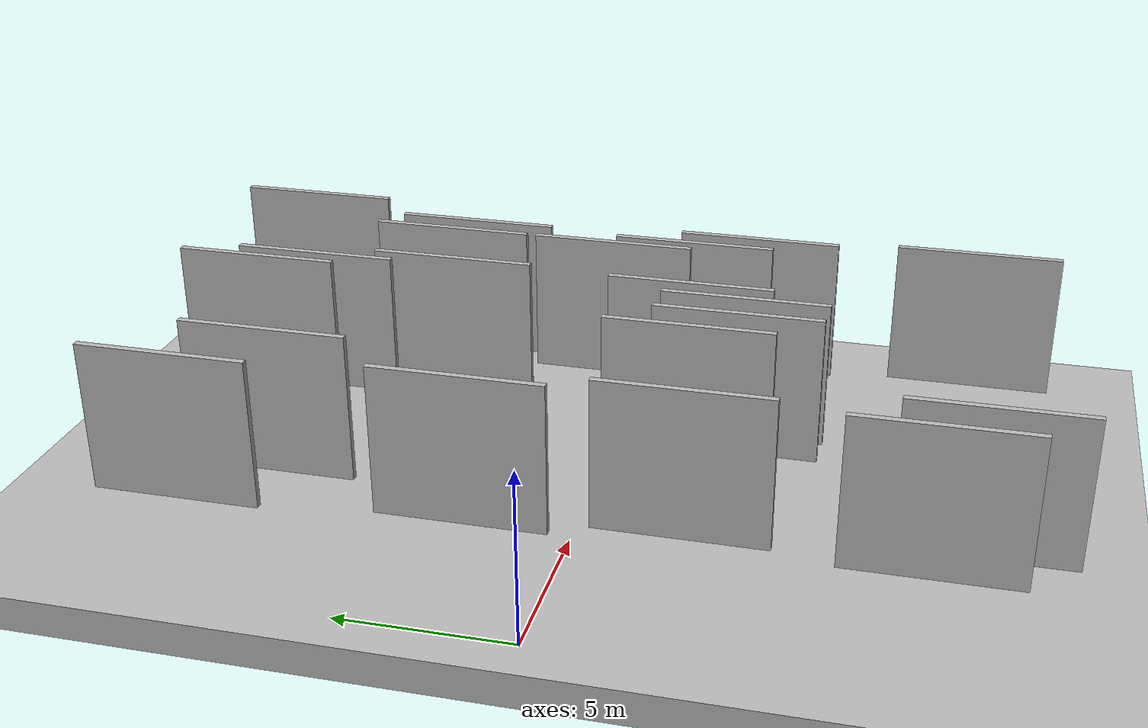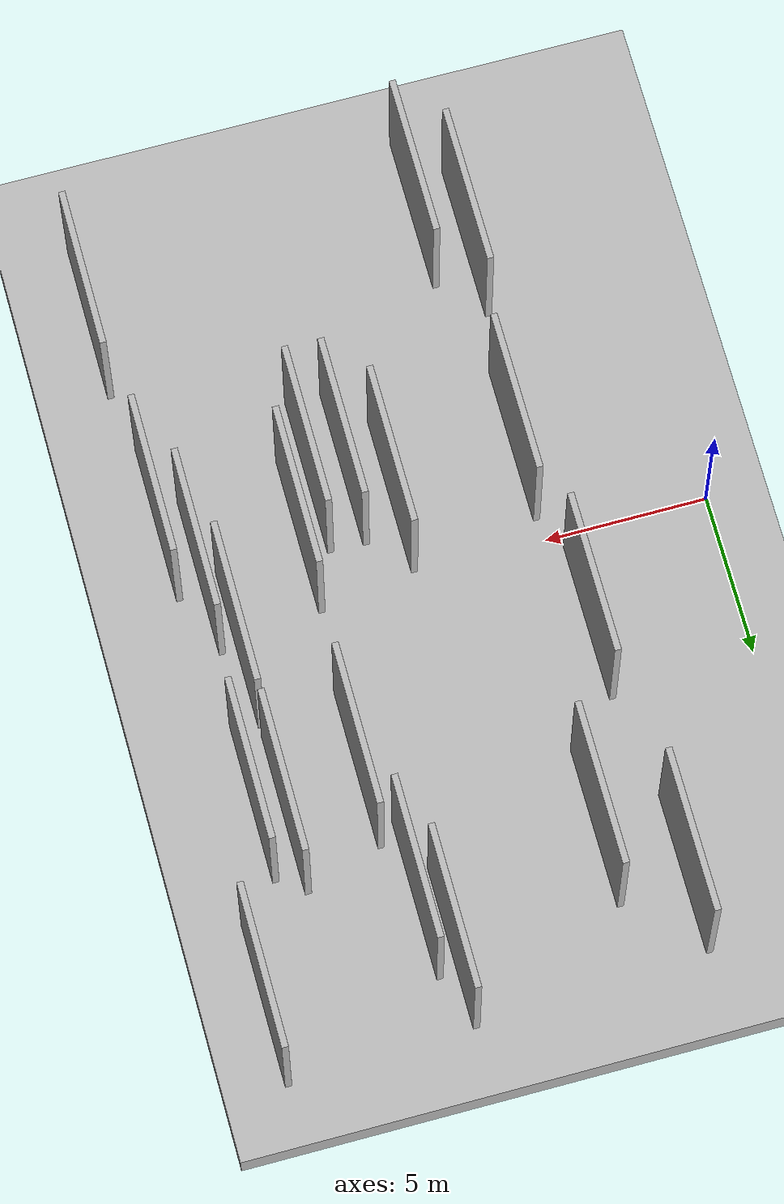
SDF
<?xml version="1.0" encoding="utf-8"?>

<sdf version="1.6">

   <world name="default">

      <gui fullscreen="0">

         <camera name="user_camera">

            <pose>-15 0 4.57585 0 0 0</pose>

            <view_controller>orbit</view_controller>

         </camera>

      </gui>

      <scene>

         <sky>

           <clouds>

             <speed>12</speed>

           </clouds>

         </sky>

         <ambient>0.4 0.4 0.4 1</ambient>

         <background>0.7 0.7 0.7 1</background>

         <shadows>1</shadows>

      </scene>

      <gravity>0 0 -9.8066</gravity>

      <magnetic_field>6e-06 2.3e-05 -4.2e-05</magnetic_field>

      <physics default="0" name="default_physics" type="ode">

         <ode>

            <solver>

               <type>quick</type>

               <iters>10</iters>

               <sor>1.0</sor>

               <use_dynamic_moi_rescaling>0</use_dynamic_moi_rescaling>

            </solver>

            <constraints>

               <cfm>0</cfm>

               <erp>0.2</erp>

               <contact_max_correcting_vel>100</contact_max_correcting_vel>

               <contact_surface_layer>0.001</contact_surface_layer>

            </constraints>

         </ode>

         <max_step_size>0.004</max_step_size>

         <real_time_factor>1</real_time_factor>

         <real_time_update_rate>250</real_time_update_rate>

      </physics>

      <light name="sun" type="directional">

         <cast_shadows>1</cast_shadows>

         <pose>0 0 10 0 0 0</pose>

         <diffuse>0.8 0.8 0.8 1</diffuse>

         <specular>0.2 0.2 0.2 1</specular>

         <attenuation>

            <range>1000</range>

            <constant>0.9</constant>

            <linear>0.01</linear>

            <quadratic>0.001</quadratic>

         </attenuation>

         <direction>-0.5 0.1 -0.9</direction>

      </light>

      <include>

         <name>ground_plane_1</name>

         <uri>model://HANNAS_ground_plane</uri>

         <pose>0 0 0  0 0 0</pose>

      </include>

      <include>

         <name>ground_plane_2</name>

         <uri>model://HANNAS_ground_plane</uri>

         <pose>100 0 0  0 0 0</pose>

      </include>

      <model name="HANNAS_wall_1">

         <static>1</static>

         <pose frame="">14.7380 1.0888 0.0 0.000000 0.000000 1.570796</pose>

         <link name="link">

            <pose frame="">0 0 2.50 0 0 0</pose>

            <collision name="collision">

               <geometry>

                  <box>

                     <size>5.00 0.2 5.00</size>

                  </box>

               </geometry>

               <max_contacts>10</max_contacts>

               <surface>

                  <contact>

                     <ode/>

                  </contact>

                  <bounce/>

                  <friction>

                     <torsional>

                        <ode/>

                     </torsional>

                     <ode/>

                  </friction>

               </surface>

            </collision>

            <visual name="visual">

               <cast_shadows>0</cast_shadows>

               <geometry>

                  <box>

                     <size>5.00 0.2 5.00</size>

                  </box>

               </geometry>

               <material>

                  <script>

                     <uri>model://HANNAS_wall/materials/scripts</uri>

                     <uri>model://HANNAS_wall/materials/textures</uri>

                     <name>vrc/HANNAS_wall</name>

                  </script>

               </material>

            </visual>

            <self_collide>0</self_collide>

            <enable_wind>0</enable_wind>

            <kinematic>0</kinematic>

         </link>

      </model>

      <model name="HANNAS_wall_2">

         <static>1</static>

         <pose frame="">16.4564 -10.1881 0.0 0.000000 0.000000 1.570796</pose>

         <link name="link">

            <pose frame="">0 0 2.50 0 0 0</pose>

            <collision name="collision">

               <geometry>

                  <box>

                     <size>5.00 0.2 5.00</size>

                  </box>

               </geometry>

               <max_contacts>10</max_contacts>

               <surface>

                  <contact>

                     <ode/>

                  </contact>

                  <bounce/>

                  <friction>

                     <torsional>

                        <ode/>

                     </torsional>

                     <ode/>

                  </friction>

               </surface>

            </collision>

            <visual name="visual">

               <cast_shadows>0</cast_shadows>

               <geometry>

                  <box>

                     <size>5.00 0.2 5.00</size>

                  </box>

               </geometry>

               <material>

                  <script>

                     <uri>model://HANNAS_wall/materials/scripts</uri>

                     <uri>model://HANNAS_wall/materials/textures</uri>

                     <name>vrc/HANNAS_wall</name>

                  </script>

               </material>

            </visual>

            <self_collide>0</self_collide>

            <enable_wind>0</enable_wind>

            <kinematic>0</kinematic>

         </link>

      </model>

      <model name="HANNAS_wall_3">

         <static>1</static>

         <pose frame="">16.0737 -3.3738 0.0 0.000000 0.000000 1.570796</pose>

         <link name="link">

            <pose frame="">0 0 2.50 0 0 0</pose>

            <collision name="collision">

               <geometry>

                  <box>

                     <size>5.00 0.2 5.00</size>

                  </box>

               </geometry>

               <max_contacts>10</max_contacts>

               <surface>

                  <contact>

                     <ode/>

                  </contact>

                  <bounce/>

                  <friction>

                     <torsional>

                        <ode/>

                     </torsional>

                     <ode/>

                  </friction>

               </surface>

            </collision>

            <visual name="visual">

               <cast_shadows>0</cast_shadows>

               <geometry>

                  <box>

                     <size>5.00 0.2 5.00</size>

                  </box>

               </geometry>

               <material>

                  <script>

                     <uri>model://HANNAS_wall/materials/scripts</uri>

                     <uri>model://HANNAS_wall/materials/textures</uri>

                     <name>vrc/HANNAS_wall</name>

                  </script>

               </material>

            </visual>

            <self_collide>0</self_collide>

            <enable_wind>0</enable_wind>

            <kinematic>0</kinematic>

         </link>

      </model>

      <model name="HANNAS_wall_4">

         <static>1</static>

         <pose frame="">3.9370 11.1824 0.0 0.000000 0.000000 1.570796</pose>

         <link name="link">

            <pose frame="">0 0 2.50 0 0 0</pose>

            <collision name="collision">

               <geometry>

                  <box>

                     <size>5.00 0.2 5.00</size>

                  </box>

               </geometry>

               <max_contacts>10</max_contacts>

               <surface>

                  <contact>

                     <ode/>

                  </contact>

                  <bounce/>

                  <friction>

                     <torsional>

                        <ode/>

                     </torsional>

                     <ode/>

                  </friction>

               </surface>

            </collision>

            <visual name="visual">

               <cast_shadows>0</cast_shadows>

               <geometry>

                  <box>

                     <size>5.00 0.2 5.00</size>

                  </box>

               </geometry>

               <material>

                  <script>

                     <uri>model://HANNAS_wall/materials/scripts</uri>

                     <uri>model://HANNAS_wall/materials/textures</uri>

                     <name>vrc/HANNAS_wall</name>

                  </script>

               </material>

            </visual>

            <self_collide>0</self_collide>

            <enable_wind>0</enable_wind>

            <kinematic>0</kinematic>

         </link>

      </model>

      <model name="HANNAS_wall_5">

         <static>1</static>

         <pose frame="">12.0923 -1.9052 0.0 0.000000 0.000000 1.570796</pose>

         <link name="link">

            <pose frame="">0 0 2.50 0 0 0</pose>

            <collision name="collision">

               <geometry>

                  <box>

                     <size>5.00 0.2 5.00</size>

                  </box>

               </geometry>

               <max_contacts>10</max_contacts>

               <surface>

                  <contact>

                     <ode/>

                  </contact>

                  <bounce/>

                  <friction>

                     <torsional>

                        <ode/>

                     </torsional>

                     <ode/>

                  </friction>

               </surface>

            </collision>

            <visual name="visual">

               <cast_shadows>0</cast_shadows>

               <geometry>

                  <box>

                     <size>5.00 0.2 5.00</size>

                  </box>

               </geometry>

               <material>

                  <script>

                     <uri>model://HANNAS_wall/materials/scripts</uri>

                     <uri>model://HANNAS_wall/materials/textures</uri>

                     <name>vrc/HANNAS_wall</name>

                  </script>

               </material>

            </visual>

            <self_collide>0</self_collide>

            <enable_wind>0</enable_wind>

            <kinematic>0</kinematic>

         </link>

      </model>

      <model name="HANNAS_wall_6">

         <static>1</static>

         <pose frame="">11.3502 -3.6699 0.0 0.000000 0.000000 1.570796</pose>

         <link name="link">

            <pose frame="">0 0 2.50 0 0 0</pose>

            <collision name="collision">

               <geometry>

                  <box>

                     <size>5.00 0.2 5.00</size>

                  </box>

               </geometry>

               <max_contacts>10</max_contacts>

               <surface>

                  <contact>

                     <ode/>

                  </contact>

                  <bounce/>

                  <friction>

                     <torsional>

                        <ode/>

                     </torsional>

                     <ode/>

                  </friction>

               </surface>

            </collision>

            <visual name="visual">

               <cast_shadows>0</cast_shadows>

               <geometry>

                  <box>

                     <size>5.00 0.2 5.00</size>

                  </box>

               </geometry>

               <material>

                  <script>

                     <uri>model://HANNAS_wall/materials/scripts</uri>

                     <uri>model://HANNAS_wall/materials/textures</uri>

                     <name>vrc/HANNAS_wall</name>

                  </script>

               </material>

            </visual>

            <self_collide>0</self_collide>

            <enable_wind>0</enable_wind>

            <kinematic>0</kinematic>

         </link>

      </model>

      <model name="HANNAS_wall_7">

         <static>1</static>

         <pose frame="">6.0468 -11.0918 0.0 0.000000 0.000000 1.570796</pose>

         <link name="link">

            <pose frame="">0 0 2.50 0 0 0</pose>

            <collision name="collision">

               <geometry>

                  <box>

                     <size>5.00 0.2 5.00</size>

                  </box>

               </geometry>

               <max_contacts>10</max_contacts>

               <surface>

                  <contact>

                     <ode/>

                  </contact>

                  <bounce/>

                  <friction>

                     <torsional>

                        <ode/>

                     </torsional>

                     <ode/>

                  </friction>

               </surface>

            </collision>

            <visual name="visual">

               <cast_shadows>0</cast_shadows>

               <geometry>

                  <box>

                     <size>5.00 0.2 5.00</size>

                  </box>

               </geometry>

               <material>

                  <script>

                     <uri>model://HANNAS_wall/materials/scripts</uri>

                     <uri>model://HANNAS_wall/materials/textures</uri>

                     <name>vrc/HANNAS_wall</name>

                  </script>

               </material>

            </visual>

            <self_collide>0</self_collide>

            <enable_wind>0</enable_wind>

            <kinematic>0</kinematic>

         </link>

      </model>

      <model name="HANNAS_wall_8">

         <static>1</static>

         <pose frame="">5.1480 -3.0388 0.0 0.000000 0.000000 1.570796</pose>

         <link name="link">

            <pose frame="">0 0 2.50 0 0 0</pose>

            <collision name="collision">

               <geometry>

                  <box>

                     <size>5.00 0.2 5.00</size>

                  </box>

               </geometry>

               <max_contacts>10</max_contacts>

               <surface>

                  <contact>

                     <ode/>

                  </contact>

                  <bounce/>

                  <friction>

                     <torsional>

                        <ode/>

                     </torsional>

                     <ode/>

                  </friction>

               </surface>

            </collision>

            <visual name="visual">

               <cast_shadows>0</cast_shadows>

               <geometry>

                  <box>

                     <size>5.00 0.2 5.00</size>

                  </box>

               </geometry>

               <material>

                  <script>

                     <uri>model://HANNAS_wall/materials/scripts</uri>

                     <uri>model://HANNAS_wall/materials/textures</uri>

                     <name>vrc/HANNAS_wall</name>

                  </script>

               </material>

            </visual>

            <self_collide>0</self_collide>

            <enable_wind>0</enable_wind>

            <kinematic>0</kinematic>

         </link>

      </model>

      <model name="HANNAS_wall_9">

         <static>1</static>

         <pose frame="">15.2754 -1.4124 0.0 0.000000 0.000000 1.570796</pose>

         <link name="link">

            <pose frame="">0 0 2.50 0 0 0</pose>

            <collision name="collision">

               <geometry>

                  <box>

                     <size>5.00 0.2 5.00</size>

                  </box>

               </geometry>

               <max_contacts>10</max_contacts>

               <surface>

                  <contact>

                     <ode/>

                  </contact>

                  <bounce/>

                  <friction>

                     <torsional>

                        <ode/>

                     </torsional>

                     <ode/>

                  </friction>

               </surface>

            </collision>

            <visual name="visual">

               <cast_shadows>0</cast_shadows>

               <geometry>

                  <box>

                     <size>5.00 0.2 5.00</size>

                  </box>

               </geometry>

               <material>

                  <script>

                     <uri>model://HANNAS_wall/materials/scripts</uri>

                     <uri>model://HANNAS_wall/materials/textures</uri>

                     <name>vrc/HANNAS_wall</name>

                  </script>

               </material>

            </visual>

            <self_collide>0</self_collide>

            <enable_wind>0</enable_wind>

            <kinematic>0</kinematic>

         </link>

      </model>

      <model name="HANNAS_wall_10">

         <static>1</static>

         <pose frame="">14.7207 6.3916 0.0 0.000000 0.000000 1.570796</pose>

         <link name="link">

            <pose frame="">0 0 2.50 0 0 0</pose>

            <collision name="collision">

               <geometry>

                  <box>

                     <size>5.00 0.2 5.00</size>

                  </box>

               </geometry>

               <max_contacts>10</max_contacts>

               <surface>

                  <contact>

                     <ode/>

                  </contact>

                  <bounce/>

                  <friction>

                     <torsional>

                        <ode/>

                     </torsional>

                     <ode/>

                  </friction>

               </surface>

            </collision>

            <visual name="visual">

               <cast_shadows>0</cast_shadows>

               <geometry>

                  <box>

                     <size>5.00 0.2 5.00</size>

                  </box>

               </geometry>

               <material>

                  <script>

                     <uri>model://HANNAS_wall/materials/scripts</uri>

                     <uri>model://HANNAS_wall/materials/textures</uri>

                     <name>vrc/HANNAS_wall</name>

                  </script>

               </material>

            </visual>

            <self_collide>0</self_collide>

            <enable_wind>0</enable_wind>

            <kinematic>0</kinematic>

         </link>

      </model>

      <model name="HANNAS_wall_11">

         <static>1</static>

         <pose frame="">4.7582 -9.7761 0.0 0.000000 0.000000 1.570796</pose>

         <link name="link">

            <pose frame="">0 0 2.50 0 0 0</pose>

            <collision name="collision">

               <geometry>

                  <box>

                     <size>5.00 0.2 5.00</size>

                  </box>

               </geometry>

               <max_contacts>10</max_contacts>

               <surface>

                  <contact>

                     <ode/>

                  </contact>

                  <bounce/>

                  <friction>

                     <torsional>

                        <ode/>

                     </torsional>

                     <ode/>

                  </friction>

               </surface>

            </collision>

            <visual name="visual">

               <cast_shadows>0</cast_shadows>

               <geometry>

                  <box>

                     <size>5.00 0.2 5.00</size>

                  </box>

               </geometry>

               <material>

                  <script>

                     <uri>model://HANNAS_wall/materials/scripts</uri>

                     <uri>model://HANNAS_wall/materials/textures</uri>

                     <name>vrc/HANNAS_wall</name>

                  </script>

               </material>

            </visual>

            <self_collide>0</self_collide>

            <enable_wind>0</enable_wind>

            <kinematic>0</kinematic>

         </link>

      </model>

      <model name="HANNAS_wall_12">

         <static>1</static>

         <pose frame="">4.5091 2.9715 0.0 0.000000 0.000000 1.570796</pose>

         <link name="link">

            <pose frame="">0 0 2.50 0 0 0</pose>

            <collision name="collision">

               <geometry>

                  <box>

                     <size>5.00 0.2 5.00</size>

                  </box>

               </geometry>

               <max_contacts>10</max_contacts>

               <surface>

                  <contact>

                     <ode/>

                  </contact>

                  <bounce/>

                  <friction>

                     <torsional>

                        <ode/>

                     </torsional>

                     <ode/>

                  </friction>

               </surface>

            </collision>

            <visual name="visual">

               <cast_shadows>0</cast_shadows>

               <geometry>

                  <box>

                     <size>5.00 0.2 5.00</size>

                  </box>

               </geometry>

               <material>

                  <script>

                     <uri>model://HANNAS_wall/materials/scripts</uri>

                     <uri>model://HANNAS_wall/materials/textures</uri>

                     <name>vrc/HANNAS_wall</name>

                  </script>

               </material>

            </visual>

            <self_collide>0</self_collide>

            <enable_wind>0</enable_wind>

            <kinematic>0</kinematic>

         </link>

      </model>

      <model name="HANNAS_wall_13">

         <static>1</static>

         <pose frame="">11.7024 9.8791 0.0 0.000000 0.000000 1.570796</pose>

         <link name="link">

            <pose frame="">0 0 2.50 0 0 0</pose>

            <collision name="collision">

               <geometry>

                  <box>

                     <size>5.00 0.2 5.00</size>

                  </box>

               </geometry>

               <max_contacts>10</max_contacts>

               <surface>

                  <contact>

                     <ode/>

                  </contact>

                  <bounce/>

                  <friction>

                     <torsional>

                        <ode/>

                     </torsional>

                     <ode/>

                  </friction>

               </surface>

            </collision>

            <visual name="visual">

               <cast_shadows>0</cast_shadows>

               <geometry>

                  <box>

                     <size>5.00 0.2 5.00</size>

                  </box>

               </geometry>

               <material>

                  <script>

                     <uri>model://HANNAS_wall/materials/scripts</uri>

                     <uri>model://HANNAS_wall/materials/textures</uri>

                     <name>vrc/HANNAS_wall</name>

                  </script>

               </material>

            </visual>

            <self_collide>0</self_collide>

            <enable_wind>0</enable_wind>

            <kinematic>0</kinematic>

         </link>

      </model>

      <model name="HANNAS_wall_14">

         <static>1</static>

         <pose frame="">11.0744 11.5704 0.0 0.000000 0.000000 1.570796</pose>

         <link name="link">

            <pose frame="">0 0 2.50 0 0 0</pose>

            <collision name="collision">

               <geometry>

                  <box>

                     <size>5.00 0.2 5.00</size>

                  </box>

               </geometry>

               <max_contacts>10</max_contacts>

               <surface>

                  <contact>

                     <ode/>

                  </contact>

                  <bounce/>

                  <friction>

                     <torsional>

                        <ode/>

                     </torsional>

                     <ode/>

                  </friction>

               </surface>

            </collision>

            <visual name="visual">

               <cast_shadows>0</cast_shadows>

               <geometry>

                  <box>

                     <size>5.00 0.2 5.00</size>

                  </box>

               </geometry>

               <material>

                  <script>

                     <uri>model://HANNAS_wall/materials/scripts</uri>

                     <uri>model://HANNAS_wall/materials/textures</uri>

                     <name>vrc/HANNAS_wall</name>

                  </script>

               </material>

            </visual>

            <self_collide>0</self_collide>

            <enable_wind>0</enable_wind>

            <kinematic>0</kinematic>

         </link>

      </model>

      <model name="HANNAS_wall_15">

         <static>1</static>

         <pose frame="">10.2600 -3.6312 0.0 0.000000 0.000000 1.570796</pose>

         <link name="link">

            <pose frame="">0 0 2.50 0 0 0</pose>

            <collision name="collision">

               <geometry>

                  <box>

                     <size>5.00 0.2 5.00</size>

                  </box>

               </geometry>

               <max_contacts>10</max_contacts>

               <surface>

                  <contact>

                     <ode/>

                  </contact>

                  <bounce/>

                  <friction>

                     <torsional>

                        <ode/>

                     </torsional>

                     <ode/>

                  </friction>

               </surface>

            </collision>

            <visual name="visual">

               <cast_shadows>0</cast_shadows>

               <geometry>

                  <box>

                     <size>5.00 0.2 5.00</size>

                  </box>

               </geometry>

               <material>

                  <script>

                     <uri>model://HANNAS_wall/materials/scripts</uri>

                     <uri>model://HANNAS_wall/materials/textures</uri>

                     <name>vrc/HANNAS_wall</name>

                  </script>

               </material>

            </visual>

            <self_collide>0</self_collide>

            <enable_wind>0</enable_wind>

            <kinematic>0</kinematic>

         </link>

      </model>

      <model name="HANNAS_wall_16">

         <static>1</static>

         <pose frame="">16.7602 11.8082 0.0 0.000000 0.000000 1.570796</pose>

         <link name="link">

            <pose frame="">0 0 2.50 0 0 0</pose>

            <collision name="collision">

               <geometry>

                  <box>

                     <size>5.00 0.2 5.00</size>

                  </box>

               </geometry>

               <max_contacts>10</max_contacts>

               <surface>

                  <contact>

                     <ode/>

                  </contact>

                  <bounce/>

                  <friction>

                     <torsional>

                        <ode/>

                     </torsional>

                     <ode/>

                  </friction>

               </surface>

            </collision>

            <visual name="visual">

               <cast_shadows>0</cast_shadows>

               <geometry>

                  <box>

                     <size>5.00 0.2 5.00</size>

                  </box>

               </geometry>

               <material>

                  <script>

                     <uri>model://HANNAS_wall/materials/scripts</uri>

                     <uri>model://HANNAS_wall/materials/textures</uri>

                     <name>vrc/HANNAS_wall</name>

                  </script>

               </material>

            </visual>

            <self_collide>0</self_collide>

            <enable_wind>0</enable_wind>

            <kinematic>0</kinematic>

         </link>

      </model>

      <model name="HANNAS_wall_17">

         <static>1</static>

         <pose frame="">15.5462 5.7979 0.0 0.000000 0.000000 1.570796</pose>

         <link name="link">

            <pose frame="">0 0 2.50 0 0 0</pose>

            <collision name="collision">

               <geometry>

                  <box>

                     <size>5.00 0.2 5.00</size>

                  </box>

               </geometry>

               <max_contacts>10</max_contacts>

               <surface>

                  <contact>

                     <ode/>

                  </contact>

                  <bounce/>

                  <friction>

                     <torsional>

                        <ode/>

                     </torsional>

                     <ode/>

                  </friction>

               </surface>

            </collision>

            <visual name="visual">

               <cast_shadows>0</cast_shadows>

               <geometry>

                  <box>

                     <size>5.00 0.2 5.00</size>

                  </box>

               </geometry>

               <material>

                  <script>

                     <uri>model://HANNAS_wall/materials/scripts</uri>

                     <uri>model://HANNAS_wall/materials/textures</uri>

                     <name>vrc/HANNAS_wall</name>

                  </script>

               </material>

            </visual>

            <self_collide>0</self_collide>

            <enable_wind>0</enable_wind>

            <kinematic>0</kinematic>

         </link>

      </model>

      <model name="HANNAS_wall_18">

         <static>1</static>

         <pose frame="">12.3063 5.6007 0.0 0.000000 0.000000 1.570796</pose>

         <link name="link">

            <pose frame="">0 0 2.50 0 0 0</pose>

            <collision name="collision">

               <geometry>

                  <box>

                     <size>5.00 0.2 5.00</size>

                  </box>

               </geometry>

               <max_contacts>10</max_contacts>

               <surface>

                  <contact>

                     <ode/>

                  </contact>

                  <bounce/>

                  <friction>

                     <torsional>

                        <ode/>

                     </torsional>

                     <ode/>

                  </friction>

               </surface>

            </collision>

            <visual name="visual">

               <cast_shadows>0</cast_shadows>

               <geometry>

                  <box>

                     <size>5.00 0.2 5.00</size>

                  </box>

               </geometry>

               <material>

                  <script>

                     <uri>model://HANNAS_wall/materials/scripts</uri>

                     <uri>model://HANNAS_wall/materials/textures</uri>

                     <name>vrc/HANNAS_wall</name>

                  </script>

               </material>

            </visual>

            <self_collide>0</self_collide>

            <enable_wind>0</enable_wind>

            <kinematic>0</kinematic>

         </link>

      </model>

      <model name="HANNAS_wall_19">

         <static>1</static>

         <pose frame="">9.1028 -2.4088 0.0 0.000000 0.000000 1.570796</pose>

         <link name="link">

            <pose frame="">0 0 2.50 0 0 0</pose>

            <collision name="collision">

               <geometry>

                  <box>

                     <size>5.00 0.2 5.00</size>

                  </box>

               </geometry>

               <max_contacts>10</max_contacts>

               <surface>

                  <contact>

                     <ode/>

                  </contact>

                  <bounce/>

                  <friction>

                     <torsional>

                        <ode/>

                     </torsional>

                     <ode/>

                  </friction>

               </surface>

            </collision>

            <visual name="visual">

               <cast_shadows>0</cast_shadows>

               <geometry>

                  <box>

                     <size>5.00 0.2 5.00</size>

                  </box>

               </geometry>

               <material>

                  <script>

                     <uri>model://HANNAS_wall/materials/scripts</uri>

                     <uri>model://HANNAS_wall/materials/textures</uri>

                     <name>vrc/HANNAS_wall</name>

                  </script>

               </material>

            </visual>

            <self_collide>0</self_collide>

            <enable_wind>0</enable_wind>

            <kinematic>0</kinematic>

         </link>

      </model>

      <model name="HANNAS_wall_20">

         <static>1</static>

         <pose frame="">6.0505 9.1591 0.0 0.000000 0.000000 1.570796</pose>

         <link name="link">

            <pose frame="">0 0 2.50 0 0 0</pose>

            <collision name="collision">

               <geometry>

                  <box>

                     <size>5.00 0.2 5.00</size>

                  </box>

               </geometry>

               <max_contacts>10</max_contacts>

               <surface>

                  <contact>

                     <ode/>

                  </contact>

                  <bounce/>

                  <friction>

                     <torsional>

                        <ode/>

                     </torsional>

                     <ode/>

                  </friction>

               </surface>

            </collision>

            <visual name="visual">

               <cast_shadows>0</cast_shadows>

               <geometry>

                  <box>

                     <size>5.00 0.2 5.00</size>

                  </box>

               </geometry>

               <material>

                  <script>

                     <uri>model://HANNAS_wall/materials/scripts</uri>

                     <uri>model://HANNAS_wall/materials/textures</uri>

                     <name>vrc/HANNAS_wall</name>

                  </script>

               </material>

            </visual>

            <self_collide>0</self_collide>

            <enable_wind>0</enable_wind>

            <kinematic>0</kinematic>

         </link>

      </model>

   </world>

</sdf>

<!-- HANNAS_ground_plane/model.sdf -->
<sdf version="1.4">
<model name="HANNAS_ground_plane">
  <static>true</static>
    <link name="link">
      <collision name="collision">
        <geometry>
          <plane>
            <normal>0 0 1</normal>
            <size>1000 1000</size>
          </plane>
        </geometry>
        <surface>
          <friction>
            <ode>
              <mu>100</mu>
              <mu2>50</mu2>
            </ode>
          </friction>
        </surface>
      </collision>
      <visual name="visual">
        <cast_shadows>false</cast_shadows>
        <geometry>
          <plane>
            <normal>0 0 1</normal>
            <size>1000 1000</size>
          </plane>
        </geometry>
        <material>
          <script>
            <uri>model://HANNAS_ground_plane/materials/scripts/HANNAS_ground_plane.material</uri>
	    <uri>model://HANNAS_ground_plane/materials/textures</uri>
            <name>HANNASGroundPlane/Image</name>
          </script>
        </material>
      </visual>
    </link>
  </model>
</sdf>
